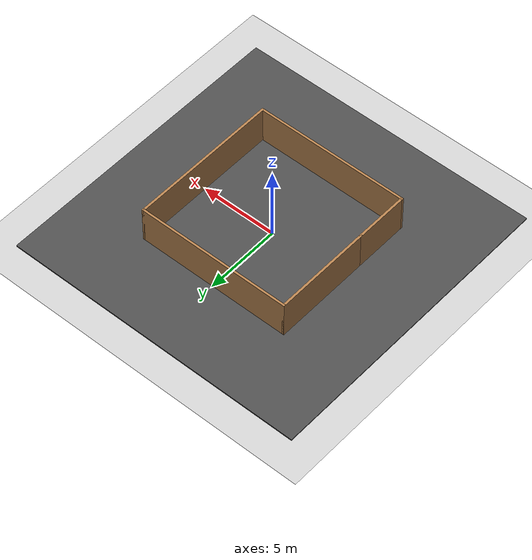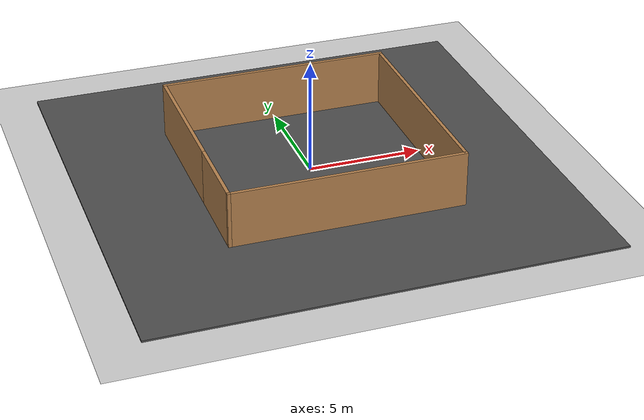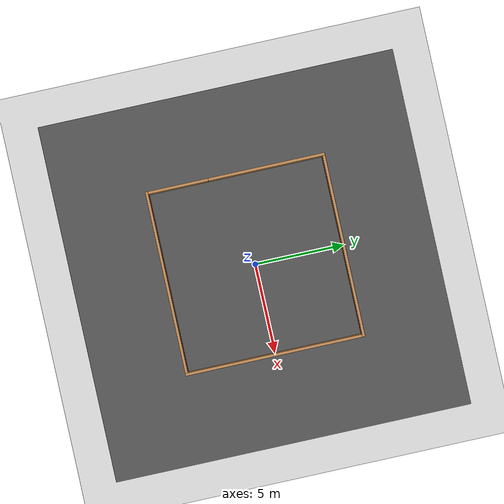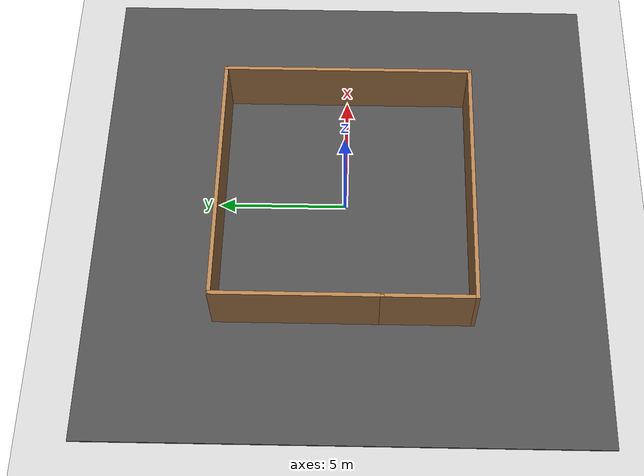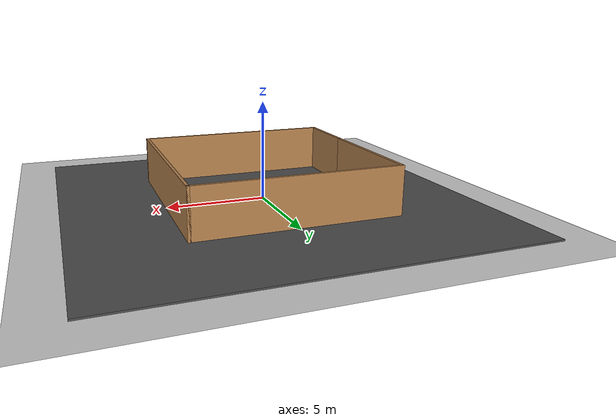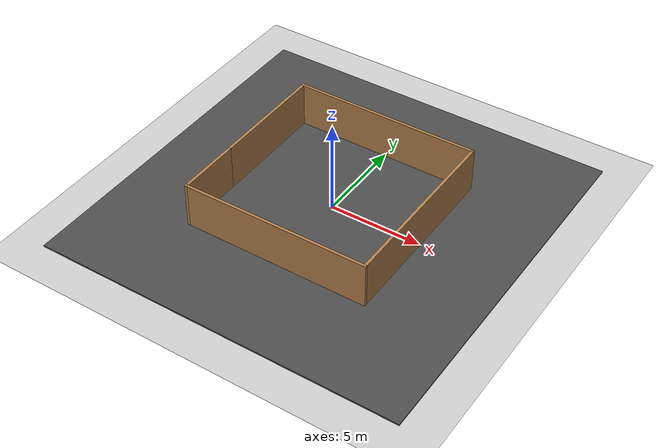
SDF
<sdf version="1.6">
 <world name="default">
  <light name="sun" type="directional">
   <pose>0 0 10 0 -0 0</pose>
   <diffuse>0.8 0.8 0.8 1</diffuse>
   <specular>0.1 0.1 0.1 1</specular>
   <attenuation>
    <range>1000</range>
    <constant>0.9</constant>
    <linear>0.01</linear>
    <quadratic>0.001</quadratic>
   </attenuation>
   <direction>-0.5 0.5 -1</direction>
  </light>
  <model name="ground_plane">
   <static>1</static>
   <link name="link">
    <collision name="collision">
     <geometry><plane><normal>0 0 1</normal><size>100 100</size></plane></geometry>
     <surface><friction><ode><mu>100</mu><mu2>50</mu2></ode></friction></surface>
    </collision>
    <visual name="visual">
     <cast_shadows>0</cast_shadows>
     <geometry><plane><normal>0 0 1</normal><size>100 100</size></plane></geometry>
     <material>
      <script><uri>file://media/materials/scripts/gazebo.material</uri><name>Gazebo/Grey</name></script>
     </material>
    </visual>
   </link>
  </model>
  <gravity>0 0 -9.8</gravity>
  <magnetic_field>6e-06 2.3e-05 -4.2e-05</magnetic_field>
  <atmosphere type="adiabatic"/>
  <physics name="default_physics" default="0" type="ode">
   <max_step_size>0.001</max_step_size>
   <real_time_factor>1</real_time_factor>
   <real_time_update_rate>1000</real_time_update_rate>
  </physics>
  <scene><ambient>0.4 0.4 0.4 1</ambient><background>0.7 0.7 0.7 1</background><shadows>1</shadows></scene>
  <spherical_coordinates>
   <surface_model>EARTH_WGS84</surface_model>
   <latitude_deg>0</latitude_deg>
   <longitude_deg>0</longitude_deg>
   <elevation>0</elevation>
   <heading_deg>0</heading_deg>
  </spherical_coordinates>
  <model name="square">
   <pose>-0.02 -0.015 0 0 -0 0</pose>
   <link name="Wall_1">
    <collision name="Wall_1_Collision">
     <geometry><box><size>6.5 0.15 2.5</size></box></geometry>
     <pose>0 0 1.25 0 -0 0</pose>
    </collision>
    <visual name="Wall_1_Visual">
     <pose>0 0 1.25 0 -0 0</pose>
     <geometry><box><size>6.5 0.15 2.5</size></box></geometry>
     <material>
      <script><uri>file://media/materials/scripts/gazebo.material</uri><name>Gazebo/Wood</name></script>
      <ambient>1 1 1 1</ambient>
     </material>
    </visual>
    <pose>-5.05 1.75 0 0 -0 1.5708</pose>
   </link>
   <link name="Wall_2">
    <collision name="Wall_2_Collision">
     <geometry><box><size>10.25 0.15 2.5</size></box></geometry>
     <pose>0 0 1.25 0 -0 0</pose>
    </collision>
    <visual name="Wall_2_Visual">
     <pose>0 0 1.25 0 -0 0</pose>
     <geometry><box><size>10.25 0.15 2.5</size></box></geometry>
     <material>
      <script><uri>file://media/materials/scripts/gazebo.material</uri><name>Gazebo/Wood</name></script>
      <ambient>1 1 1 1</ambient>
     </material>
    </visual>
    <pose>0 4.925 0 0 -0 0</pose>
   </link>
   <link name="Wall_3">
    <collision name="Wall_3_Collision">
     <geometry><box><size>10 0.15 2.5</size></box></geometry>
     <pose>0 0 1.25 0 -0 0</pose>
    </collision>
    <visual name="Wall_3_Visual">
     <pose>0 0 1.25 0 -0 0</pose>
     <geometry><box><size>10 0.15 2.5</size></box></geometry>
     <material>
      <script><uri>file://media/materials/scripts/gazebo.material</uri><name>Gazebo/Wood</name></script>
      <ambient>1 1 1 1</ambient>
     </material>
    </visual>
    <pose>5.05 0 0 0 0 -1.5708</pose>
   </link>
   <link name="Wall_5">
    <collision name="Wall_5_Collision">
     <geometry><box><size>10.25 0.15 2.5</size></box></geometry>
     <pose>0 0 1.25 0 -0 0</pose>
    </collision>
    <visual name="Wall_5_Visual">
     <pose>0 0 1.25 0 -0 0</pose>
     <geometry><box><size>10.25 0.15 2.5</size></box></geometry>
     <material>
      <script><uri>file://media/materials/scripts/gazebo.material</uri><name>Gazebo/Wood</name></script>
      <ambient>1 1 1 1</ambient>
     </material>
    </visual>
    <pose>0 -4.925 0 0 -0 3.14159</pose>
   </link>
   <link name="Wall_6">
    <collision name="Wall_6_Collision">
     <geometry><box><size>3.65 0.15 2.5</size></box></geometry>
     <pose>0 0 1.25 0 -0 0</pose>
    </collision>
    <visual name="Wall_6_Visual">
     <pose>0 0 1.25 0 -0 0</pose>
     <geometry><box><size>3.65 0.15 2.5</size></box></geometry>
     <material>
      <script><uri>file://media/materials/scripts/gazebo.material</uri><name>Gazebo/Wood</name></script>
      <ambient>1 1 1 1</ambient>
     </material>
    </visual>
    <pose>-5.05 -3.175 0 0 -0 1.5708</pose>
   </link>
   <static>1</static>
  </model>
  <model name="asphalt_plane">
   <static>1</static>
   <link name="link">
    <collision name="collision"><geometry><box><size>20 20 0.1</size></box></geometry></collision>
    <visual name="visual">
     <cast_shadows>0</cast_shadows>
     <geometry><box><size>20 20 0.1</size></box></geometry>
     <material>
      <script>
       <uri>model://asphalt_plane/materials/scripts</uri>
       <uri>model://asphalt_plane/materials/textures</uri>
       <name>vrc/asphalt</name>
      </script>
     </material>
    </visual>
   </link>
   <pose>0.044642 -0.070305 0 0 -0 0</pose>
  </model>
 </world>
</sdf>
